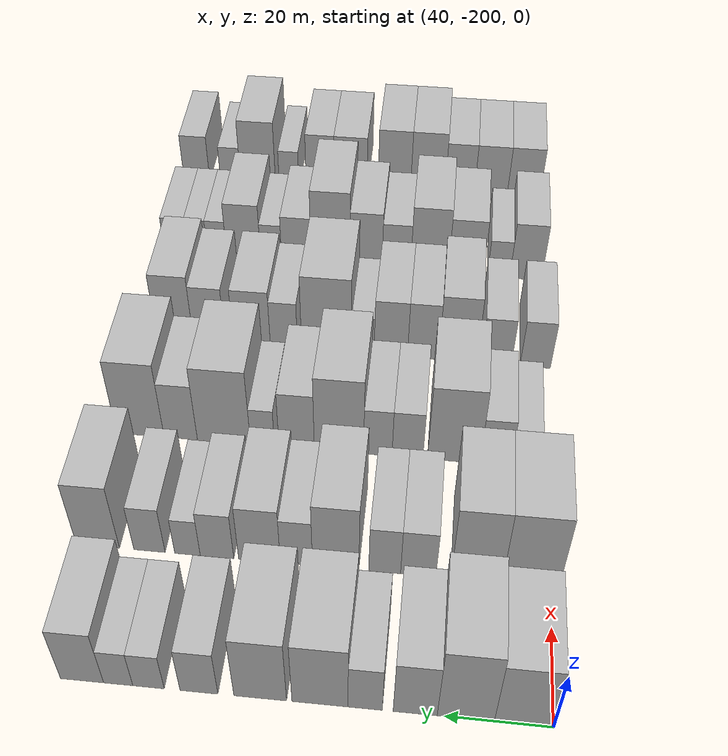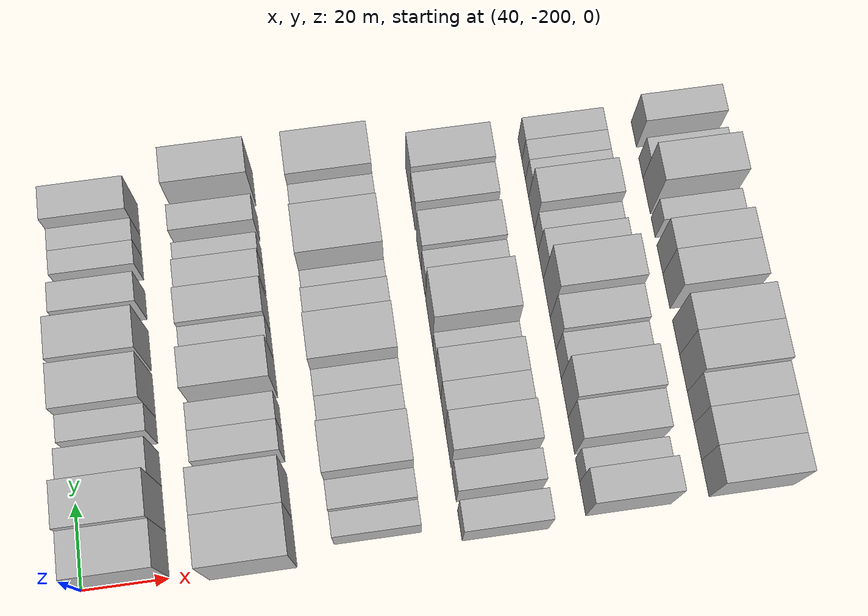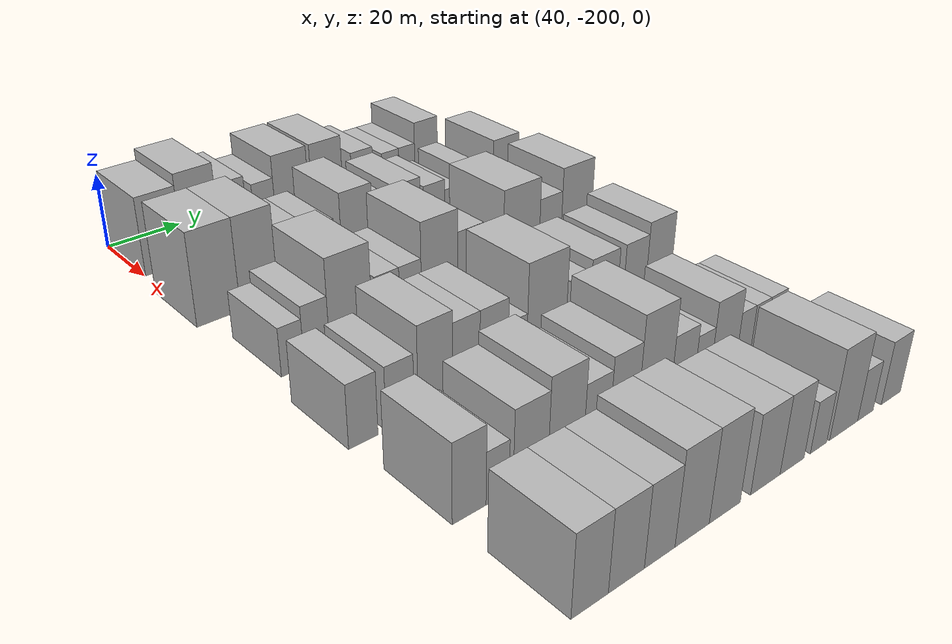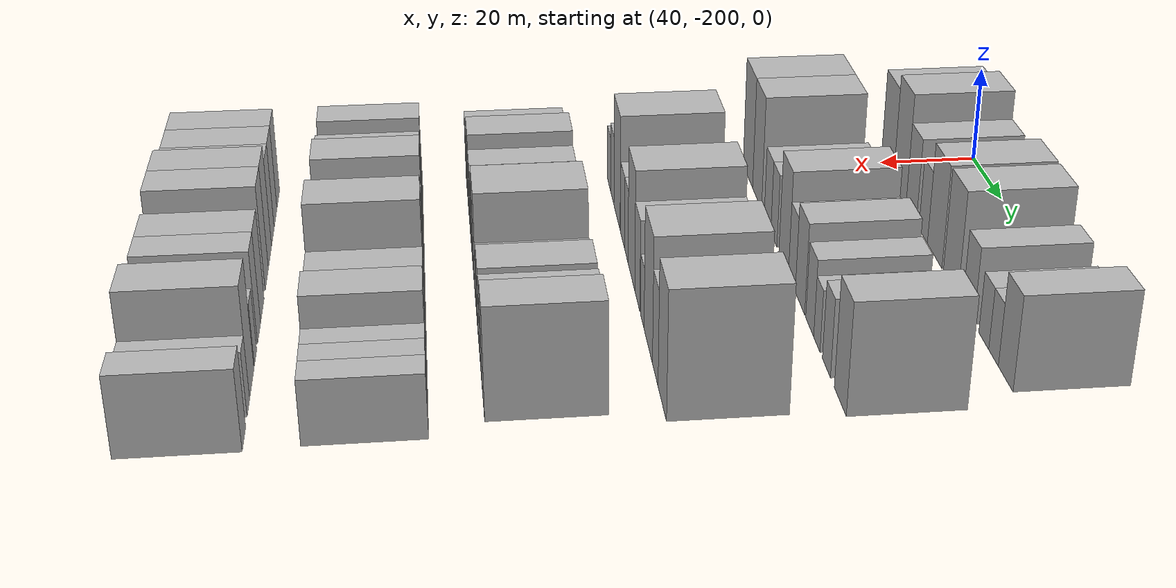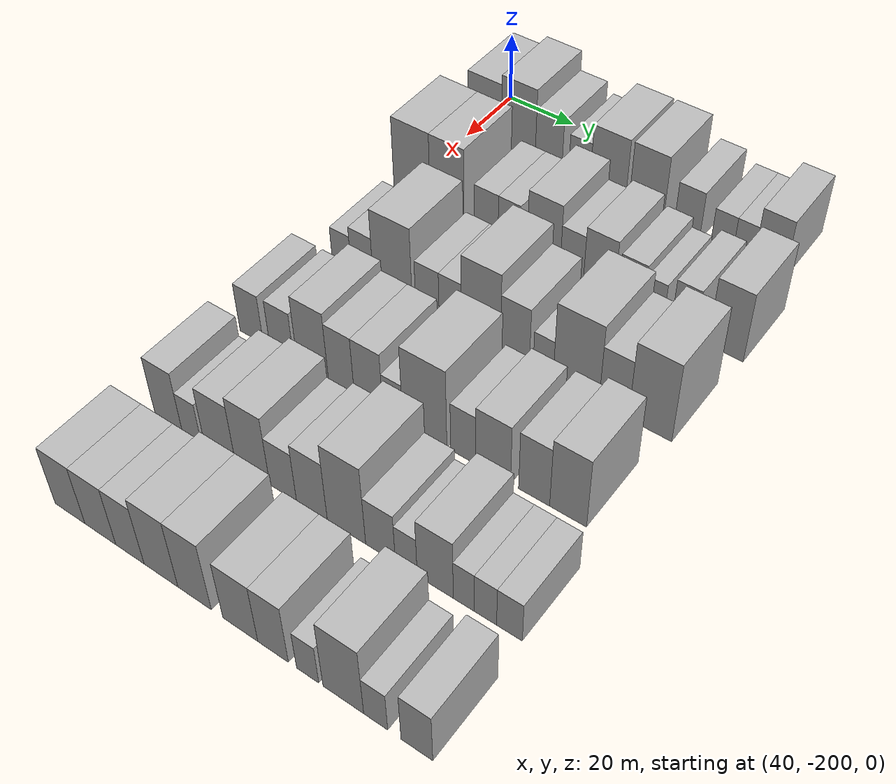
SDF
<sdf version="1.6">
 <world name="default">
  <model name="building_34">
   <static>1</static>
   <pose>50.0000 -194.4521 0 0.000000 0.000000 0.000000</pose>
   <link name="link">
    <pose>0 0 10.50 0 0 0</pose>
    <collision name="collision"><geometry><box><size>20.0000 10.4557 21.0000</size></box></geometry></collision>
    <visual name="visual">
     <cast_shadows>0</cast_shadows>
     <geometry><box><size>20.0000 10.4557 21.0000</size></box></geometry>
     <material>
      <script>
       <uri>model://HANNAS_wall/materials/scripts</uri>
       <uri>model://HANNAS_wall/materials/textures</uri>
       <name>vrc/HANNAS_wall</name>
      </script>
     </material>
    </visual>
   </link>
  </model>
  <model name="building_35">
   <static>1</static>
   <pose>50.0000 -183.9868 0 0.000000 0.000000 0.000000</pose>
   <link name="link">
    <pose>0 0 12.00 0 0 0</pose>
    <collision name="collision"><geometry><box><size>20.0000 10.4749 24.0000</size></box></geometry></collision>
    <visual name="visual">
     <cast_shadows>0</cast_shadows>
     <geometry><box><size>20.0000 10.4749 24.0000</size></box></geometry>
     <material>
      <script>
       <uri>model://HANNAS_wall/materials/scripts</uri>
       <uri>model://HANNAS_wall/materials/textures</uri>
       <name>vrc/HANNAS_wall</name>
      </script>
     </material>
    </visual>
   </link>
  </model>
  <model name="building_36">
   <static>1</static>
   <pose>50.0000 -174.6977 0 0.000000 0.000000 0.000000</pose>
   <link name="link">
    <pose>0 0 9.00 0 0 0</pose>
    <collision name="collision"><geometry><box><size>20.0000 8.1034 18.0000</size></box></geometry></collision>
    <visual name="visual">
     <cast_shadows>0</cast_shadows>
     <geometry><box><size>20.0000 8.1034 18.0000</size></box></geometry>
     <material>
      <script>
       <uri>model://HANNAS_wall/materials/scripts</uri>
       <uri>model://HANNAS_wall/materials/textures</uri>
       <name>vrc/HANNAS_wall</name>
      </script>
     </material>
    </visual>
   </link>
  </model>
  <model name="building_37">
   <static>1</static>
   <pose>50.0000 -165.4682 0 0.000000 0.000000 0.000000</pose>
   <link name="link">
    <pose>0 0 7.50 0 0 0</pose>
    <collision name="collision"><geometry><box><size>20.0000 6.3556 15.0000</size></box></geometry></collision>
    <visual name="visual">
     <cast_shadows>0</cast_shadows>
     <geometry><box><size>20.0000 6.3556 15.0000</size></box></geometry>
     <material>
      <script>
       <uri>model://HANNAS_wall/materials/scripts</uri>
       <uri>model://HANNAS_wall/materials/textures</uri>
       <name>vrc/HANNAS_wall</name>
      </script>
     </material>
    </visual>
   </link>
  </model>
  <model name="building_38">
   <static>1</static>
   <pose>50.0000 -157.0802 0 0.000000 0.000000 0.000000</pose>
   <link name="link">
    <pose>0 0 10.50 0 0 0</pose>
    <collision name="collision"><geometry><box><size>20.0000 10.4205 21.0000</size></box></geometry></collision>
    <visual name="visual">
     <cast_shadows>0</cast_shadows>
     <geometry><box><size>20.0000 10.4205 21.0000</size></box></geometry>
     <material>
      <script>
       <uri>model://HANNAS_wall/materials/scripts</uri>
       <uri>model://HANNAS_wall/materials/textures</uri>
       <name>vrc/HANNAS_wall</name>
      </script>
     </material>
    </visual>
   </link>
  </model>
  <model name="building_39">
   <static>1</static>
   <pose>50.0000 -145.9283 0 0.000000 0.000000 0.000000</pose>
   <link name="link">
    <pose>0 0 10.50 0 0 0</pose>
    <collision name="collision"><geometry><box><size>20.0000 9.8833 21.0000</size></box></geometry></collision>
    <visual name="visual">
     <cast_shadows>0</cast_shadows>
     <geometry><box><size>20.0000 9.8833 21.0000</size></box></geometry>
     <material>
      <script>
       <uri>model://HANNAS_wall/materials/scripts</uri>
       <uri>model://HANNAS_wall/materials/textures</uri>
       <name>vrc/HANNAS_wall</name>
      </script>
     </material>
    </visual>
   </link>
  </model>
  <model name="building_40">
   <static>1</static>
   <pose>50.0000 -134.4075 0 0.000000 0.000000 0.000000</pose>
   <link name="link">
    <pose>0 0 7.50 0 0 0</pose>
    <collision name="collision"><geometry><box><size>20.0000 7.1582 15.0000</size></box></geometry></collision>
    <visual name="visual">
     <cast_shadows>0</cast_shadows>
     <geometry><box><size>20.0000 7.1582 15.0000</size></box></geometry>
     <material>
      <script>
       <uri>model://HANNAS_wall/materials/scripts</uri>
       <uri>model://HANNAS_wall/materials/textures</uri>
       <name>vrc/HANNAS_wall</name>
      </script>
     </material>
    </visual>
   </link>
  </model>
  <model name="building_41">
   <static>1</static>
   <pose>50.0000 -124.8479 0 0.000000 0.000000 0.000000</pose>
   <link name="link">
    <pose>0 0 6.00 0 0 0</pose>
    <collision name="collision"><geometry><box><size>20.0000 5.9610 12.0000</size></box></geometry></collision>
    <visual name="visual">
     <cast_shadows>0</cast_shadows>
     <geometry><box><size>20.0000 5.9610 12.0000</size></box></geometry>
     <material>
      <script>
       <uri>model://HANNAS_wall/materials/scripts</uri>
       <uri>model://HANNAS_wall/materials/textures</uri>
       <name>vrc/HANNAS_wall</name>
      </script>
     </material>
    </visual>
   </link>
  </model>
  <model name="building_42">
   <static>1</static>
   <pose>50.0000 -119.0805 0 0.000000 0.000000 0.000000</pose>
   <link name="link">
    <pose>0 0 6.00 0 0 0</pose>
    <collision name="collision"><geometry><box><size>20.0000 5.5739 12.0000</size></box></geometry></collision>
    <visual name="visual">
     <cast_shadows>0</cast_shadows>
     <geometry><box><size>20.0000 5.5739 12.0000</size></box></geometry>
     <material>
      <script>
       <uri>model://HANNAS_wall/materials/scripts</uri>
       <uri>model://HANNAS_wall/materials/textures</uri>
       <name>vrc/HANNAS_wall</name>
      </script>
     </material>
    </visual>
   </link>
  </model>
  <model name="building_43">
   <static>1</static>
   <pose>50.0000 -112.1648 0 0.000000 0.000000 0.000000</pose>
   <link name="link">
    <pose>0 0 9.00 0 0 0</pose>
    <collision name="collision"><geometry><box><size>20.0000 8.2574 18.0000</size></box></geometry></collision>
    <visual name="visual">
     <cast_shadows>0</cast_shadows>
     <geometry><box><size>20.0000 8.2574 18.0000</size></box></geometry>
     <material>
      <script>
       <uri>model://HANNAS_wall/materials/scripts</uri>
       <uri>model://HANNAS_wall/materials/textures</uri>
       <name>vrc/HANNAS_wall</name>
      </script>
     </material>
    </visual>
   </link>
  </model>
  <model name="building_141">
   <static>1</static>
   <pose>79.0000 -195.9877 0 0.000000 0.000000 0.000000</pose>
   <link name="link">
    <pose>0 0 12.00 0 0 0</pose>
    <collision name="collision"><geometry><box><size>20.0000 11.2566 24.0000</size></box></geometry></collision>
    <visual name="visual">
     <cast_shadows>0</cast_shadows>
     <geometry><box><size>20.0000 11.2566 24.0000</size></box></geometry>
     <material>
      <script>
       <uri>model://HANNAS_wall/materials/scripts</uri>
       <uri>model://HANNAS_wall/materials/textures</uri>
       <name>vrc/HANNAS_wall</name>
      </script>
     </material>
    </visual>
   </link>
  </model>
  <model name="building_142">
   <static>1</static>
   <pose>79.0000 -185.2264 0 0.000000 0.000000 0.000000</pose>
   <link name="link">
    <pose>0 0 12.00 0 0 0</pose>
    <collision name="collision"><geometry><box><size>20.0000 10.2660 24.0000</size></box></geometry></collision>
    <visual name="visual">
     <cast_shadows>0</cast_shadows>
     <geometry><box><size>20.0000 10.2660 24.0000</size></box></geometry>
     <material>
      <script>
       <uri>model://HANNAS_wall/materials/scripts</uri>
       <uri>model://HANNAS_wall/materials/textures</uri>
       <name>vrc/HANNAS_wall</name>
      </script>
     </material>
    </visual>
   </link>
  </model>
  <model name="building_143">
   <static>1</static>
   <pose>79.0000 -173.5516 0 0.000000 0.000000 0.000000</pose>
   <link name="link">
    <pose>0 0 7.50 0 0 0</pose>
    <collision name="collision"><geometry><box><size>20.0000 7.0835 15.0000</size></box></geometry></collision>
    <visual name="visual">
     <cast_shadows>0</cast_shadows>
     <geometry><box><size>20.0000 7.0835 15.0000</size></box></geometry>
     <material>
      <script>
       <uri>model://HANNAS_wall/materials/scripts</uri>
       <uri>model://HANNAS_wall/materials/textures</uri>
       <name>vrc/HANNAS_wall</name>
      </script>
     </material>
    </visual>
   </link>
  </model>
  <model name="building_144">
   <static>1</static>
   <pose>79.0000 -166.8018 0 0.000000 0.000000 0.000000</pose>
   <link name="link">
    <pose>0 0 7.50 0 0 0</pose>
    <collision name="collision"><geometry><box><size>20.0000 6.4161 15.0000</size></box></geometry></collision>
    <visual name="visual">
     <cast_shadows>0</cast_shadows>
     <geometry><box><size>20.0000 6.4161 15.0000</size></box></geometry>
     <material>
      <script>
       <uri>model://HANNAS_wall/materials/scripts</uri>
       <uri>model://HANNAS_wall/materials/textures</uri>
       <name>vrc/HANNAS_wall</name>
      </script>
     </material>
    </visual>
   </link>
  </model>
  <model name="building_145">
   <static>1</static>
   <pose>79.0000 -156.8905 0 0.000000 0.000000 0.000000</pose>
   <link name="link">
    <pose>0 0 10.50 0 0 0</pose>
    <collision name="collision"><geometry><box><size>20.0000 9.4064 21.0000</size></box></geometry></collision>
    <visual name="visual">
     <cast_shadows>0</cast_shadows>
     <geometry><box><size>20.0000 9.4064 21.0000</size></box></geometry>
     <material>
      <script>
       <uri>model://HANNAS_wall/materials/scripts</uri>
       <uri>model://HANNAS_wall/materials/textures</uri>
       <name>vrc/HANNAS_wall</name>
      </script>
     </material>
    </visual>
   </link>
  </model>
  <model name="building_146">
   <static>1</static>
   <pose>79.0000 -148.9209 0 0.000000 0.000000 0.000000</pose>
   <link name="link">
    <pose>0 0 7.50 0 0 0</pose>
    <collision name="collision"><geometry><box><size>20.0000 6.5329 15.0000</size></box></geometry></collision>
    <visual name="visual">
     <cast_shadows>0</cast_shadows>
     <geometry><box><size>20.0000 6.5329 15.0000</size></box></geometry>
     <material>
      <script>
       <uri>model://HANNAS_wall/materials/scripts</uri>
       <uri>model://HANNAS_wall/materials/textures</uri>
       <name>vrc/HANNAS_wall</name>
      </script>
     </material>
    </visual>
   </link>
  </model>
  <model name="building_147">
   <static>1</static>
   <pose>79.0000 -141.3865 0 0.000000 0.000000 0.000000</pose>
   <link name="link">
    <pose>0 0 9.00 0 0 0</pose>
    <collision name="collision"><geometry><box><size>20.0000 8.5359 18.0000</size></box></geometry></collision>
    <visual name="visual">
     <cast_shadows>0</cast_shadows>
     <geometry><box><size>20.0000 8.5359 18.0000</size></box></geometry>
     <material>
      <script>
       <uri>model://HANNAS_wall/materials/scripts</uri>
       <uri>model://HANNAS_wall/materials/textures</uri>
       <name>vrc/HANNAS_wall</name>
      </script>
     </material>
    </visual>
   </link>
  </model>
  <model name="building_148">
   <static>1</static>
   <pose>79.0000 -132.6690 0 0.000000 0.000000 0.000000</pose>
   <link name="link">
    <pose>0 0 7.50 0 0 0</pose>
    <collision name="collision"><geometry><box><size>20.0000 6.8992 15.0000</size></box></geometry></collision>
    <visual name="visual">
     <cast_shadows>0</cast_shadows>
     <geometry><box><size>20.0000 6.8992 15.0000</size></box></geometry>
     <material>
      <script>
       <uri>model://HANNAS_wall/materials/scripts</uri>
       <uri>model://HANNAS_wall/materials/textures</uri>
       <name>vrc/HANNAS_wall</name>
      </script>
     </material>
    </visual>
   </link>
  </model>
  <model name="building_149">
   <static>1</static>
   <pose>79.0000 -126.5856 0 0.000000 0.000000 0.000000</pose>
   <link name="link">
    <pose>0 0 6.00 0 0 0</pose>
    <collision name="collision"><geometry><box><size>20.0000 5.2676 12.0000</size></box></geometry></collision>
    <visual name="visual">
     <cast_shadows>0</cast_shadows>
     <geometry><box><size>20.0000 5.2676 12.0000</size></box></geometry>
     <material>
      <script>
       <uri>model://HANNAS_wall/materials/scripts</uri>
       <uri>model://HANNAS_wall/materials/textures</uri>
       <name>vrc/HANNAS_wall</name>
      </script>
     </material>
    </visual>
   </link>
  </model>
  <model name="building_150">
   <static>1</static>
   <pose>79.0000 -118.7104 0 0.000000 0.000000 0.000000</pose>
   <link name="link">
    <pose>0 0 7.50 0 0 0</pose>
    <collision name="collision"><geometry><box><size>20.0000 6.4827 15.0000</size></box></geometry></collision>
    <visual name="visual">
     <cast_shadows>0</cast_shadows>
     <geometry><box><size>20.0000 6.4827 15.0000</size></box></geometry>
     <material>
      <script>
       <uri>model://HANNAS_wall/materials/scripts</uri>
       <uri>model://HANNAS_wall/materials/textures</uri>
       <name>vrc/HANNAS_wall</name>
      </script>
     </material>
    </visual>
   </link>
  </model>
  <model name="building_151">
   <static>1</static>
   <pose>79.0000 -107.9693 0 0.000000 0.000000 0.000000</pose>
   <link name="link">
    <pose>0 0 10.50 0 0 0</pose>
    <collision name="collision"><geometry><box><size>20.0000 8.9994 21.0000</size></box></geometry></collision>
    <visual name="visual">
     <cast_shadows>0</cast_shadows>
     <geometry><box><size>20.0000 8.9994 21.0000</size></box></geometry>
     <material>
      <script>
       <uri>model://HANNAS_wall/materials/scripts</uri>
       <uri>model://HANNAS_wall/materials/textures</uri>
       <name>vrc/HANNAS_wall</name>
      </script>
     </material>
    </visual>
   </link>
  </model>
  <model name="building_255">
   <static>1</static>
   <pose>108.0000 -194.7560 0 0.000000 0.000000 0.000000</pose>
   <link name="link">
    <pose>0 0 6.00 0 0 0</pose>
    <collision name="collision"><geometry><box><size>20.0000 5.7504 12.0000</size></box></geometry></collision>
    <visual name="visual">
     <cast_shadows>0</cast_shadows>
     <geometry><box><size>20.0000 5.7504 12.0000</size></box></geometry>
     <material>
      <script>
       <uri>model://HANNAS_wall/materials/scripts</uri>
       <uri>model://HANNAS_wall/materials/textures</uri>
       <name>vrc/HANNAS_wall</name>
      </script>
     </material>
    </visual>
   </link>
  </model>
  <model name="building_256">
   <static>1</static>
   <pose>108.0000 -188.5659 0 0.000000 0.000000 0.000000</pose>
   <link name="link">
    <pose>0 0 7.50 0 0 0</pose>
    <collision name="collision"><geometry><box><size>20.0000 6.6298 15.0000</size></box></geometry></collision>
    <visual name="visual">
     <cast_shadows>0</cast_shadows>
     <geometry><box><size>20.0000 6.6298 15.0000</size></box></geometry>
     <material>
      <script>
       <uri>model://HANNAS_wall/materials/scripts</uri>
       <uri>model://HANNAS_wall/materials/textures</uri>
       <name>vrc/HANNAS_wall</name>
      </script>
     </material>
    </visual>
   </link>
  </model>
  <model name="building_257">
   <static>1</static>
   <pose>108.0000 -179.5536 0 0.000000 0.000000 0.000000</pose>
   <link name="link">
    <pose>0 0 12.00 0 0 0</pose>
    <collision name="collision"><geometry><box><size>20.0000 11.3948 24.0000</size></box></geometry></collision>
    <visual name="visual">
     <cast_shadows>0</cast_shadows>
     <geometry><box><size>20.0000 11.3948 24.0000</size></box></geometry>
     <material>
      <script>
       <uri>model://HANNAS_wall/materials/scripts</uri>
       <uri>model://HANNAS_wall/materials/textures</uri>
       <name>vrc/HANNAS_wall</name>
      </script>
     </material>
    </visual>
   </link>
  </model>
  <model name="building_258">
   <static>1</static>
   <pose>108.0000 -169.4934 0 0.000000 0.000000 0.000000</pose>
   <link name="link">
    <pose>0 0 7.50 0 0 0</pose>
    <collision name="collision"><geometry><box><size>20.0000 6.7256 15.0000</size></box></geometry></collision>
    <visual name="visual">
     <cast_shadows>0</cast_shadows>
     <geometry><box><size>20.0000 6.7256 15.0000</size></box></geometry>
     <material>
      <script>
       <uri>model://HANNAS_wall/materials/scripts</uri>
       <uri>model://HANNAS_wall/materials/textures</uri>
       <name>vrc/HANNAS_wall</name>
      </script>
     </material>
    </visual>
   </link>
  </model>
  <model name="building_259">
   <static>1</static>
   <pose>108.0000 -163.0175 0 0.000000 0.000000 0.000000</pose>
   <link name="link">
    <pose>0 0 7.50 0 0 0</pose>
    <collision name="collision"><geometry><box><size>20.0000 6.2262 15.0000</size></box></geometry></collision>
    <visual name="visual">
     <cast_shadows>0</cast_shadows>
     <geometry><box><size>20.0000 6.2262 15.0000</size></box></geometry>
     <material>
      <script>
       <uri>model://HANNAS_wall/materials/scripts</uri>
       <uri>model://HANNAS_wall/materials/textures</uri>
       <name>vrc/HANNAS_wall</name>
      </script>
     </material>
    </visual>
   </link>
  </model>
  <model name="building_260">
   <static>1</static>
   <pose>108.0000 -154.5010 0 0.000000 0.000000 0.000000</pose>
   <link name="link">
    <pose>0 0 12.00 0 0 0</pose>
    <collision name="collision"><geometry><box><size>20.0000 10.8069 24.0000</size></box></geometry></collision>
    <visual name="visual">
     <cast_shadows>0</cast_shadows>
     <geometry><box><size>20.0000 10.8069 24.0000</size></box></geometry>
     <material>
      <script>
       <uri>model://HANNAS_wall/materials/scripts</uri>
       <uri>model://HANNAS_wall/materials/textures</uri>
       <name>vrc/HANNAS_wall</name>
      </script>
     </material>
    </visual>
   </link>
  </model>
  <model name="building_261">
   <static>1</static>
   <pose>108.0000 -145.2001 0 0.000000 0.000000 0.000000</pose>
   <link name="link">
    <pose>0 0 9.00 0 0 0</pose>
    <collision name="collision"><geometry><box><size>20.0000 7.7949 18.0000</size></box></geometry></collision>
    <visual name="visual">
     <cast_shadows>0</cast_shadows>
     <geometry><box><size>20.0000 7.7949 18.0000</size></box></geometry>
     <material>
      <script>
       <uri>model://HANNAS_wall/materials/scripts</uri>
       <uri>model://HANNAS_wall/materials/textures</uri>
       <name>vrc/HANNAS_wall</name>
      </script>
     </material>
    </visual>
   </link>
  </model>
  <model name="building_262">
   <static>1</static>
   <pose>108.0000 -137.6461 0 0.000000 0.000000 0.000000</pose>
   <link name="link">
    <pose>0 0 6.00 0 0 0</pose>
    <collision name="collision"><geometry><box><size>20.0000 5.3130 12.0000</size></box></geometry></collision>
    <visual name="visual">
     <cast_shadows>0</cast_shadows>
     <geometry><box><size>20.0000 5.3130 12.0000</size></box></geometry>
     <material>
      <script>
       <uri>model://HANNAS_wall/materials/scripts</uri>
       <uri>model://HANNAS_wall/materials/textures</uri>
       <name>vrc/HANNAS_wall</name>
      </script>
     </material>
    </visual>
   </link>
  </model>
  <model name="building_263">
   <static>1</static>
   <pose>108.0000 -129.0631 0 0.000000 0.000000 0.000000</pose>
   <link name="link">
    <pose>0 0 12.00 0 0 0</pose>
    <collision name="collision"><geometry><box><size>20.0000 11.8531 24.0000</size></box></geometry></collision>
    <visual name="visual">
     <cast_shadows>0</cast_shadows>
     <geometry><box><size>20.0000 11.8531 24.0000</size></box></geometry>
     <material>
      <script>
       <uri>model://HANNAS_wall/materials/scripts</uri>
       <uri>model://HANNAS_wall/materials/textures</uri>
       <name>vrc/HANNAS_wall</name>
      </script>
     </material>
    </visual>
   </link>
  </model>
  <model name="building_264">
   <static>1</static>
   <pose>108.0000 -119.4119 0 0.000000 0.000000 0.000000</pose>
   <link name="link">
    <pose>0 0 9.00 0 0 0</pose>
    <collision name="collision"><geometry><box><size>20.0000 7.4494 18.0000</size></box></geometry></collision>
    <visual name="visual">
     <cast_shadows>0</cast_shadows>
     <geometry><box><size>20.0000 7.4494 18.0000</size></box></geometry>
     <material>
      <script>
       <uri>model://HANNAS_wall/materials/scripts</uri>
       <uri>model://HANNAS_wall/materials/textures</uri>
       <name>vrc/HANNAS_wall</name>
      </script>
     </material>
    </visual>
   </link>
  </model>
  <model name="building_265">
   <static>1</static>
   <pose>108.0000 -110.3323 0 0.000000 0.000000 0.000000</pose>
   <link name="link">
    <pose>0 0 12.00 0 0 0</pose>
    <collision name="collision"><geometry><box><size>20.0000 10.7097 24.0000</size></box></geometry></collision>
    <visual name="visual">
     <cast_shadows>0</cast_shadows>
     <geometry><box><size>20.0000 10.7097 24.0000</size></box></geometry>
     <material>
      <script>
       <uri>model://HANNAS_wall/materials/scripts</uri>
       <uri>model://HANNAS_wall/materials/textures</uri>
       <name>vrc/HANNAS_wall</name>
      </script>
     </material>
    </visual>
   </link>
  </model>
  <model name="building_366">
   <static>1</static>
   <pose>137.0000 -197.3915 0 0.000000 0.000000 0.000000</pose>
   <link name="link">
    <pose>0 0 7.50 0 0 0</pose>
    <collision name="collision"><geometry><box><size>20.0000 7.0199 15.0000</size></box></geometry></collision>
    <visual name="visual">
     <cast_shadows>0</cast_shadows>
     <geometry><box><size>20.0000 7.0199 15.0000</size></box></geometry>
     <material>
      <script>
       <uri>model://HANNAS_wall/materials/scripts</uri>
       <uri>model://HANNAS_wall/materials/textures</uri>
       <name>vrc/HANNAS_wall</name>
      </script>
     </material>
    </visual>
   </link>
  </model>
  <model name="building_367">
   <static>1</static>
   <pose>137.0000 -188.3687 0 0.000000 0.000000 0.000000</pose>
   <link name="link">
    <pose>0 0 7.50 0 0 0</pose>
    <collision name="collision"><geometry><box><size>20.0000 7.0257 15.0000</size></box></geometry></collision>
    <visual name="visual">
     <cast_shadows>0</cast_shadows>
     <geometry><box><size>20.0000 7.0257 15.0000</size></box></geometry>
     <material>
      <script>
       <uri>model://HANNAS_wall/materials/scripts</uri>
       <uri>model://HANNAS_wall/materials/textures</uri>
       <name>vrc/HANNAS_wall</name>
      </script>
     </material>
    </visual>
   </link>
  </model>
  <model name="building_368">
   <static>1</static>
   <pose>137.0000 -179.3715 0 0.000000 0.000000 0.000000</pose>
   <link name="link">
    <pose>0 0 10.50 0 0 0</pose>
    <collision name="collision"><geometry><box><size>20.0000 8.9686 21.0000</size></box></geometry></collision>
    <visual name="visual">
     <cast_shadows>0</cast_shadows>
     <geometry><box><size>20.0000 8.9686 21.0000</size></box></geometry>
     <material>
      <script>
       <uri>model://HANNAS_wall/materials/scripts</uri>
       <uri>model://HANNAS_wall/materials/textures</uri>
       <name>vrc/HANNAS_wall</name>
      </script>
     </material>
    </visual>
   </link>
  </model>
  <model name="building_369">
   <static>1</static>
   <pose>137.0000 -171.2459 0 0.000000 0.000000 0.000000</pose>
   <link name="link">
    <pose>0 0 9.00 0 0 0</pose>
    <collision name="collision"><geometry><box><size>20.0000 7.2825 18.0000</size></box></geometry></collision>
    <visual name="visual">
     <cast_shadows>0</cast_shadows>
     <geometry><box><size>20.0000 7.2825 18.0000</size></box></geometry>
     <material>
      <script>
       <uri>model://HANNAS_wall/materials/scripts</uri>
       <uri>model://HANNAS_wall/materials/textures</uri>
       <name>vrc/HANNAS_wall</name>
      </script>
     </material>
    </visual>
   </link>
  </model>
  <model name="building_370">
   <static>1</static>
   <pose>137.0000 -163.6743 0 0.000000 0.000000 0.000000</pose>
   <link name="link">
    <pose>0 0 9.00 0 0 0</pose>
    <collision name="collision"><geometry><box><size>20.0000 7.8607 18.0000</size></box></geometry></collision>
    <visual name="visual">
     <cast_shadows>0</cast_shadows>
     <geometry><box><size>20.0000 7.8607 18.0000</size></box></geometry>
     <material>
      <script>
       <uri>model://HANNAS_wall/materials/scripts</uri>
       <uri>model://HANNAS_wall/materials/textures</uri>
       <name>vrc/HANNAS_wall</name>
      </script>
     </material>
    </visual>
   </link>
  </model>
  <model name="building_371">
   <static>1</static>
   <pose>137.0000 -157.0368 0 0.000000 0.000000 0.000000</pose>
   <link name="link">
    <pose>0 0 6.00 0 0 0</pose>
    <collision name="collision"><geometry><box><size>20.0000 5.4144 12.0000</size></box></geometry></collision>
    <visual name="visual">
     <cast_shadows>0</cast_shadows>
     <geometry><box><size>20.0000 5.4144 12.0000</size></box></geometry>
     <material>
      <script>
       <uri>model://HANNAS_wall/materials/scripts</uri>
       <uri>model://HANNAS_wall/materials/textures</uri>
       <name>vrc/HANNAS_wall</name>
      </script>
     </material>
    </visual>
   </link>
  </model>
  <model name="building_372">
   <static>1</static>
   <pose>137.0000 -148.4753 0 0.000000 0.000000 0.000000</pose>
   <link name="link">
    <pose>0 0 12.00 0 0 0</pose>
    <collision name="collision"><geometry><box><size>20.0000 11.7086 24.0000</size></box></geometry></collision>
    <visual name="visual">
     <cast_shadows>0</cast_shadows>
     <geometry><box><size>20.0000 11.7086 24.0000</size></box></geometry>
     <material>
      <script>
       <uri>model://HANNAS_wall/materials/scripts</uri>
       <uri>model://HANNAS_wall/materials/textures</uri>
       <name>vrc/HANNAS_wall</name>
      </script>
     </material>
    </visual>
   </link>
  </model>
  <model name="building_373">
   <static>1</static>
   <pose>137.0000 -138.3983 0 0.000000 0.000000 0.000000</pose>
   <link name="link">
    <pose>0 0 7.50 0 0 0</pose>
    <collision name="collision"><geometry><box><size>20.0000 6.4455 15.0000</size></box></geometry></collision>
    <visual name="visual">
     <cast_shadows>0</cast_shadows>
     <geometry><box><size>20.0000 6.4455 15.0000</size></box></geometry>
     <material>
      <script>
       <uri>model://HANNAS_wall/materials/scripts</uri>
       <uri>model://HANNAS_wall/materials/textures</uri>
       <name>vrc/HANNAS_wall</name>
      </script>
     </material>
    </visual>
   </link>
  </model>
  <model name="building_374">
   <static>1</static>
   <pose>137.0000 -130.7742 0 0.000000 0.000000 0.000000</pose>
   <link name="link">
    <pose>0 0 9.00 0 0 0</pose>
    <collision name="collision"><geometry><box><size>20.0000 8.8028 18.0000</size></box></geometry></collision>
    <visual name="visual">
     <cast_shadows>0</cast_shadows>
     <geometry><box><size>20.0000 8.8028 18.0000</size></box></geometry>
     <material>
      <script>
       <uri>model://HANNAS_wall/materials/scripts</uri>
       <uri>model://HANNAS_wall/materials/textures</uri>
       <name>vrc/HANNAS_wall</name>
      </script>
     </material>
    </visual>
   </link>
  </model>
  <model name="building_375">
   <static>1</static>
   <pose>137.0000 -120.5554 0 0.000000 0.000000 0.000000</pose>
   <link name="link">
    <pose>0 0 9.00 0 0 0</pose>
    <collision name="collision"><geometry><box><size>20.0000 7.6348 18.0000</size></box></geometry></collision>
    <visual name="visual">
     <cast_shadows>0</cast_shadows>
     <geometry><box><size>20.0000 7.6348 18.0000</size></box></geometry>
     <material>
      <script>
       <uri>model://HANNAS_wall/materials/scripts</uri>
       <uri>model://HANNAS_wall/materials/textures</uri>
       <name>vrc/HANNAS_wall</name>
      </script>
     </material>
    </visual>
   </link>
  </model>
  <model name="building_376">
   <static>1</static>
   <pose>137.0000 -112.2969 0 0.000000 0.000000 0.000000</pose>
   <link name="link">
    <pose>0 0 10.50 0 0 0</pose>
    <collision name="collision"><geometry><box><size>20.0000 8.8823 21.0000</size></box></geometry></collision>
    <visual name="visual">
     <cast_shadows>0</cast_shadows>
     <geometry><box><size>20.0000 8.8823 21.0000</size></box></geometry>
     <material>
      <script>
       <uri>model://HANNAS_wall/materials/scripts</uri>
       <uri>model://HANNAS_wall/materials/textures</uri>
       <name>vrc/HANNAS_wall</name>
      </script>
     </material>
    </visual>
   </link>
  </model>
  <model name="building_479">
   <static>1</static>
   <pose>166.0000 -195.2585 0 0.000000 0.000000 0.000000</pose>
   <link name="link">
    <pose>0 0 9.00 0 0 0</pose>
    <collision name="collision"><geometry><box><size>20.0000 7.9044 18.0000</size></box></geometry></collision>
    <visual name="visual">
     <cast_shadows>0</cast_shadows>
     <geometry><box><size>20.0000 7.9044 18.0000</size></box></geometry>
     <material>
      <script>
       <uri>model://HANNAS_wall/materials/scripts</uri>
       <uri>model://HANNAS_wall/materials/textures</uri>
       <name>vrc/HANNAS_wall</name>
      </script>
     </material>
    </visual>
   </link>
  </model>
  <model name="building_480">
   <static>1</static>
   <pose>166.0000 -188.5252 0 0.000000 0.000000 0.000000</pose>
   <link name="link">
    <pose>0 0 6.00 0 0 0</pose>
    <collision name="collision"><geometry><box><size>20.0000 5.5622 12.0000</size></box></geometry></collision>
    <visual name="visual">
     <cast_shadows>0</cast_shadows>
     <geometry><box><size>20.0000 5.5622 12.0000</size></box></geometry>
     <material>
      <script>
       <uri>model://HANNAS_wall/materials/scripts</uri>
       <uri>model://HANNAS_wall/materials/textures</uri>
       <name>vrc/HANNAS_wall</name>
      </script>
     </material>
    </visual>
   </link>
  </model>
  <model name="building_481">
   <static>1</static>
   <pose>166.0000 -180.3434 0 0.000000 0.000000 0.000000</pose>
   <link name="link">
    <pose>0 0 9.00 0 0 0</pose>
    <collision name="collision"><geometry><box><size>20.0000 8.8013 18.0000</size></box></geometry></collision>
    <visual name="visual">
     <cast_shadows>0</cast_shadows>
     <geometry><box><size>20.0000 8.8013 18.0000</size></box></geometry>
     <material>
      <script>
       <uri>model://HANNAS_wall/materials/scripts</uri>
       <uri>model://HANNAS_wall/materials/textures</uri>
       <name>vrc/HANNAS_wall</name>
      </script>
     </material>
    </visual>
   </link>
  </model>
  <model name="building_482">
   <static>1</static>
   <pose>166.0000 -171.2137 0 0.000000 0.000000 0.000000</pose>
   <link name="link">
    <pose>0 0 10.50 0 0 0</pose>
    <collision name="collision"><geometry><box><size>20.0000 9.4581 21.0000</size></box></geometry></collision>
    <visual name="visual">
     <cast_shadows>0</cast_shadows>
     <geometry><box><size>20.0000 9.4581 21.0000</size></box></geometry>
     <material>
      <script>
       <uri>model://HANNAS_wall/materials/scripts</uri>
       <uri>model://HANNAS_wall/materials/textures</uri>
       <name>vrc/HANNAS_wall</name>
      </script>
     </material>
    </visual>
   </link>
  </model>
  <model name="building_483">
   <static>1</static>
   <pose>166.0000 -162.8928 0 0.000000 0.000000 0.000000</pose>
   <link name="link">
    <pose>0 0 7.50 0 0 0</pose>
    <collision name="collision"><geometry><box><size>20.0000 7.1836 15.0000</size></box></geometry></collision>
    <visual name="visual">
     <cast_shadows>0</cast_shadows>
     <geometry><box><size>20.0000 7.1836 15.0000</size></box></geometry>
     <material>
      <script>
       <uri>model://HANNAS_wall/materials/scripts</uri>
       <uri>model://HANNAS_wall/materials/textures</uri>
       <name>vrc/HANNAS_wall</name>
      </script>
     </material>
    </visual>
   </link>
  </model>
  <model name="building_484">
   <static>1</static>
   <pose>166.0000 -155.2363 0 0.000000 0.000000 0.000000</pose>
   <link name="link">
    <pose>0 0 9.00 0 0 0</pose>
    <collision name="collision"><geometry><box><size>20.0000 8.1293 18.0000</size></box></geometry></collision>
    <visual name="visual">
     <cast_shadows>0</cast_shadows>
     <geometry><box><size>20.0000 8.1293 18.0000</size></box></geometry>
     <material>
      <script>
       <uri>model://HANNAS_wall/materials/scripts</uri>
       <uri>model://HANNAS_wall/materials/textures</uri>
       <name>vrc/HANNAS_wall</name>
      </script>
     </material>
    </visual>
   </link>
  </model>
  <model name="building_485">
   <static>1</static>
   <pose>166.0000 -146.2356 0 0.000000 0.000000 0.000000</pose>
   <link name="link">
    <pose>0 0 12.00 0 0 0</pose>
    <collision name="collision"><geometry><box><size>20.0000 9.8722 24.0000</size></box></geometry></collision>
    <visual name="visual">
     <cast_shadows>0</cast_shadows>
     <geometry><box><size>20.0000 9.8722 24.0000</size></box></geometry>
     <material>
      <script>
       <uri>model://HANNAS_wall/materials/scripts</uri>
       <uri>model://HANNAS_wall/materials/textures</uri>
       <name>vrc/HANNAS_wall</name>
      </script>
     </material>
    </visual>
   </link>
  </model>
  <model name="building_486">
   <static>1</static>
   <pose>166.0000 -137.5712 0 0.000000 0.000000 0.000000</pose>
   <link name="link">
    <pose>0 0 7.50 0 0 0</pose>
    <collision name="collision"><geometry><box><size>20.0000 7.4566 15.0000</size></box></geometry></collision>
    <visual name="visual">
     <cast_shadows>0</cast_shadows>
     <geometry><box><size>20.0000 7.4566 15.0000</size></box></geometry>
     <material>
      <script>
       <uri>model://HANNAS_wall/materials/scripts</uri>
       <uri>model://HANNAS_wall/materials/textures</uri>
       <name>vrc/HANNAS_wall</name>
      </script>
     </material>
    </visual>
   </link>
  </model>
  <model name="building_487">
   <static>1</static>
   <pose>166.0000 -131.1493 0 0.000000 0.000000 0.000000</pose>
   <link name="link">
    <pose>0 0 6.00 0 0 0</pose>
    <collision name="collision"><geometry><box><size>20.0000 5.3871 12.0000</size></box></geometry></collision>
    <visual name="visual">
     <cast_shadows>0</cast_shadows>
     <geometry><box><size>20.0000 5.3871 12.0000</size></box></geometry>
     <material>
      <script>
       <uri>model://HANNAS_wall/materials/scripts</uri>
       <uri>model://HANNAS_wall/materials/textures</uri>
       <name>vrc/HANNAS_wall</name>
      </script>
     </material>
    </visual>
   </link>
  </model>
  <model name="building_488">
   <static>1</static>
   <pose>166.0000 -124.1095 0 0.000000 0.000000 0.000000</pose>
   <link name="link">
    <pose>0 0 9.00 0 0 0</pose>
    <collision name="collision"><geometry><box><size>20.0000 8.6924 18.0000</size></box></geometry></collision>
    <visual name="visual">
     <cast_shadows>0</cast_shadows>
     <geometry><box><size>20.0000 8.6924 18.0000</size></box></geometry>
     <material>
      <script>
       <uri>model://HANNAS_wall/materials/scripts</uri>
       <uri>model://HANNAS_wall/materials/textures</uri>
       <name>vrc/HANNAS_wall</name>
      </script>
     </material>
    </visual>
   </link>
  </model>
  <model name="building_489">
   <static>1</static>
   <pose>166.0000 -117.2900 0 0.000000 0.000000 0.000000</pose>
   <link name="link">
    <pose>0 0 6.00 0 0 0</pose>
    <collision name="collision"><geometry><box><size>20.0000 4.9468 12.0000</size></box></geometry></collision>
    <visual name="visual">
     <cast_shadows>0</cast_shadows>
     <geometry><box><size>20.0000 4.9468 12.0000</size></box></geometry>
     <material>
      <script>
       <uri>model://HANNAS_wall/materials/scripts</uri>
       <uri>model://HANNAS_wall/materials/textures</uri>
       <name>vrc/HANNAS_wall</name>
      </script>
     </material>
    </visual>
   </link>
  </model>
  <model name="building_490">
   <static>1</static>
   <pose>166.0000 -112.2122 0 0.000000 0.000000 0.000000</pose>
   <link name="link">
    <pose>0 0 6.00 0 0 0</pose>
    <collision name="collision"><geometry><box><size>20.0000 5.2087 12.0000</size></box></geometry></collision>
    <visual name="visual">
     <cast_shadows>0</cast_shadows>
     <geometry><box><size>20.0000 5.2087 12.0000</size></box></geometry>
     <material>
      <script>
       <uri>model://HANNAS_wall/materials/scripts</uri>
       <uri>model://HANNAS_wall/materials/textures</uri>
       <name>vrc/HANNAS_wall</name>
      </script>
     </material>
    </visual>
   </link>
  </model>
  <model name="building_491">
   <static>1</static>
   <pose>166.0000 -106.6579 0 0.000000 0.000000 0.000000</pose>
   <link name="link">
    <pose>0 0 6.00 0 0 0</pose>
    <collision name="collision"><geometry><box><size>20.0000 5.8998 12.0000</size></box></geometry></collision>
    <visual name="visual">
     <cast_shadows>0</cast_shadows>
     <geometry><box><size>20.0000 5.8998 12.0000</size></box></geometry>
     <material>
      <script>
       <uri>model://HANNAS_wall/materials/scripts</uri>
       <uri>model://HANNAS_wall/materials/textures</uri>
       <name>vrc/HANNAS_wall</name>
      </script>
     </material>
    </visual>
   </link>
  </model>
  <model name="building_597">
   <static>1</static>
   <pose>195.0000 -194.5604 0 0.000000 0.000000 0.000000</pose>
   <link name="link">
    <pose>0 0 9.00 0 0 0</pose>
    <collision name="collision"><geometry><box><size>20.0000 8.6091 18.0000</size></box></geometry></collision>
    <visual name="visual">
     <cast_shadows>0</cast_shadows>
     <geometry><box><size>20.0000 8.6091 18.0000</size></box></geometry>
     <material>
      <script>
       <uri>model://HANNAS_wall/materials/scripts</uri>
       <uri>model://HANNAS_wall/materials/textures</uri>
       <name>vrc/HANNAS_wall</name>
      </script>
     </material>
    </visual>
   </link>
  </model>
  <model name="building_598">
   <static>1</static>
   <pose>195.0000 -185.8907 0 0.000000 0.000000 0.000000</pose>
   <link name="link">
    <pose>0 0 9.00 0 0 0</pose>
    <collision name="collision"><geometry><box><size>20.0000 8.7302 18.0000</size></box></geometry></collision>
    <visual name="visual">
     <cast_shadows>0</cast_shadows>
     <geometry><box><size>20.0000 8.7302 18.0000</size></box></geometry>
     <material>
      <script>
       <uri>model://HANNAS_wall/materials/scripts</uri>
       <uri>model://HANNAS_wall/materials/textures</uri>
       <name>vrc/HANNAS_wall</name>
      </script>
     </material>
    </visual>
   </link>
  </model>
  <model name="building_599">
   <static>1</static>
   <pose>195.0000 -177.6258 0 0.000000 0.000000 0.000000</pose>
   <link name="link">
    <pose>0 0 9.00 0 0 0</pose>
    <collision name="collision"><geometry><box><size>20.0000 7.7998 18.0000</size></box></geometry></collision>
    <visual name="visual">
     <cast_shadows>0</cast_shadows>
     <geometry><box><size>20.0000 7.7998 18.0000</size></box></geometry>
     <material>
      <script>
       <uri>model://HANNAS_wall/materials/scripts</uri>
       <uri>model://HANNAS_wall/materials/textures</uri>
       <name>vrc/HANNAS_wall</name>
      </script>
     </material>
    </visual>
   </link>
  </model>
  <model name="building_600">
   <static>1</static>
   <pose>195.0000 -169.1599 0 0.000000 0.000000 0.000000</pose>
   <link name="link">
    <pose>0 0 10.50 0 0 0</pose>
    <collision name="collision"><geometry><box><size>20.0000 9.1319 21.0000</size></box></geometry></collision>
    <visual name="visual">
     <cast_shadows>0</cast_shadows>
     <geometry><box><size>20.0000 9.1319 21.0000</size></box></geometry>
     <material>
      <script>
       <uri>model://HANNAS_wall/materials/scripts</uri>
       <uri>model://HANNAS_wall/materials/textures</uri>
       <name>vrc/HANNAS_wall</name>
      </script>
     </material>
    </visual>
   </link>
  </model>
  <model name="building_601">
   <static>1</static>
   <pose>195.0000 -160.2340 0 0.000000 0.000000 0.000000</pose>
   <link name="link">
    <pose>0 0 10.50 0 0 0</pose>
    <collision name="collision"><geometry><box><size>20.0000 8.7198 21.0000</size></box></geometry></collision>
    <visual name="visual">
     <cast_shadows>0</cast_shadows>
     <geometry><box><size>20.0000 8.7198 21.0000</size></box></geometry>
     <material>
      <script>
       <uri>model://HANNAS_wall/materials/scripts</uri>
       <uri>model://HANNAS_wall/materials/textures</uri>
       <name>vrc/HANNAS_wall</name>
      </script>
     </material>
    </visual>
   </link>
  </model>
  <model name="building_602">
   <static>1</static>
   <pose>195.0000 -148.4536 0 0.000000 0.000000 0.000000</pose>
   <link name="link">
    <pose>0 0 9.00 0 0 0</pose>
    <collision name="collision"><geometry><box><size>20.0000 8.8411 18.0000</size></box></geometry></collision>
    <visual name="visual">
     <cast_shadows>0</cast_shadows>
     <geometry><box><size>20.0000 8.8411 18.0000</size></box></geometry>
     <material>
      <script>
       <uri>model://HANNAS_wall/materials/scripts</uri>
       <uri>model://HANNAS_wall/materials/textures</uri>
       <name>vrc/HANNAS_wall</name>
      </script>
     </material>
    </visual>
   </link>
  </model>
  <model name="building_603">
   <static>1</static>
   <pose>195.0000 -140.2510 0 0.000000 0.000000 0.000000</pose>
   <link name="link">
    <pose>0 0 9.00 0 0 0</pose>
    <collision name="collision"><geometry><box><size>20.0000 7.5640 18.0000</size></box></geometry></collision>
    <visual name="visual">
     <cast_shadows>0</cast_shadows>
     <geometry><box><size>20.0000 7.5640 18.0000</size></box></geometry>
     <material>
      <script>
       <uri>model://HANNAS_wall/materials/scripts</uri>
       <uri>model://HANNAS_wall/materials/textures</uri>
       <name>vrc/HANNAS_wall</name>
      </script>
     </material>
    </visual>
   </link>
  </model>
  <model name="building_604">
   <static>1</static>
   <pose>195.0000 -131.8045 0 0.000000 0.000000 0.000000</pose>
   <link name="link">
    <pose>0 0 6.00 0 0 0</pose>
    <collision name="collision"><geometry><box><size>20.0000 5.3291 12.0000</size></box></geometry></collision>
    <visual name="visual">
     <cast_shadows>0</cast_shadows>
     <geometry><box><size>20.0000 5.3291 12.0000</size></box></geometry>
     <material>
      <script>
       <uri>model://HANNAS_wall/materials/scripts</uri>
       <uri>model://HANNAS_wall/materials/textures</uri>
       <name>vrc/HANNAS_wall</name>
      </script>
     </material>
    </visual>
   </link>
  </model>
  <model name="building_605">
   <static>1</static>
   <pose>195.0000 -123.3702 0 0.000000 0.000000 0.000000</pose>
   <link name="link">
    <pose>0 0 10.50 0 0 0</pose>
    <collision name="collision"><geometry><box><size>20.0000 9.5394 21.0000</size></box></geometry></collision>
    <visual name="visual">
     <cast_shadows>0</cast_shadows>
     <geometry><box><size>20.0000 9.5394 21.0000</size></box></geometry>
     <material>
      <script>
       <uri>model://HANNAS_wall/materials/scripts</uri>
       <uri>model://HANNAS_wall/materials/textures</uri>
       <name>vrc/HANNAS_wall</name>
      </script>
     </material>
    </visual>
   </link>
  </model>
  <model name="building_606">
   <static>1</static>
   <pose>195.0000 -115.8494 0 0.000000 0.000000 0.000000</pose>
   <link name="link">
    <pose>0 0 6.00 0 0 0</pose>
    <collision name="collision"><geometry><box><size>20.0000 5.5024 12.0000</size></box></geometry></collision>
    <visual name="visual">
     <cast_shadows>0</cast_shadows>
     <geometry><box><size>20.0000 5.5024 12.0000</size></box></geometry>
     <material>
      <script>
       <uri>model://HANNAS_wall/materials/scripts</uri>
       <uri>model://HANNAS_wall/materials/textures</uri>
       <name>vrc/HANNAS_wall</name>
      </script>
     </material>
    </visual>
   </link>
  </model>
  <model name="building_607">
   <static>1</static>
   <pose>195.0000 -106.5667 0 0.000000 0.000000 0.000000</pose>
   <link name="link">
    <pose>0 0 7.50 0 0 0</pose>
    <collision name="collision"><geometry><box><size>20.0000 7.0628 15.0000</size></box></geometry></collision>
    <visual name="visual">
     <cast_shadows>0</cast_shadows>
     <geometry><box><size>20.0000 7.0628 15.0000</size></box></geometry>
     <material>
      <script>
       <uri>model://HANNAS_wall/materials/scripts</uri>
       <uri>model://HANNAS_wall/materials/textures</uri>
       <name>vrc/HANNAS_wall</name>
      </script>
     </material>
    </visual>
   </link>
  </model>
 </world>
</sdf>
